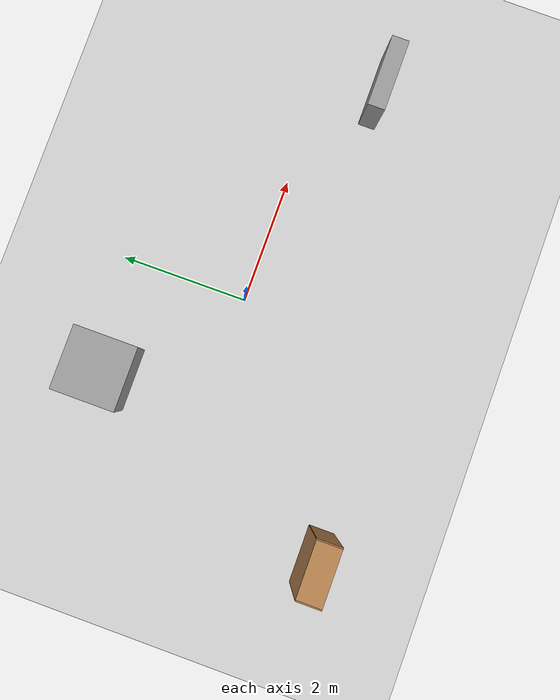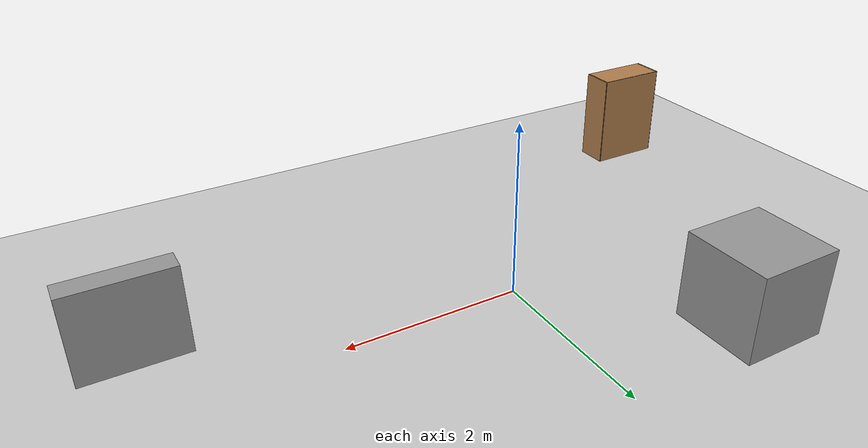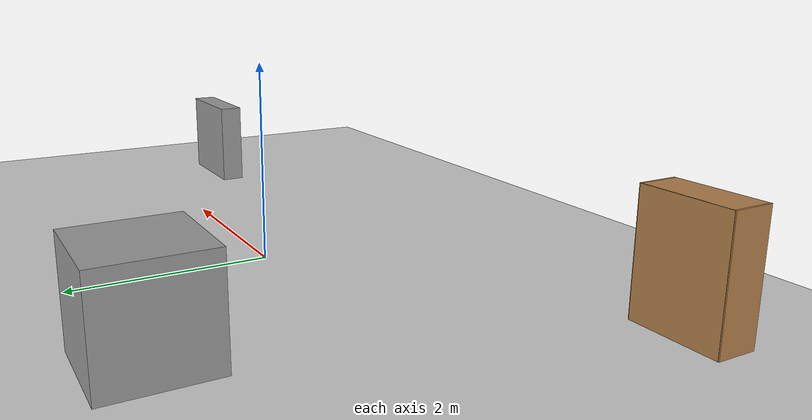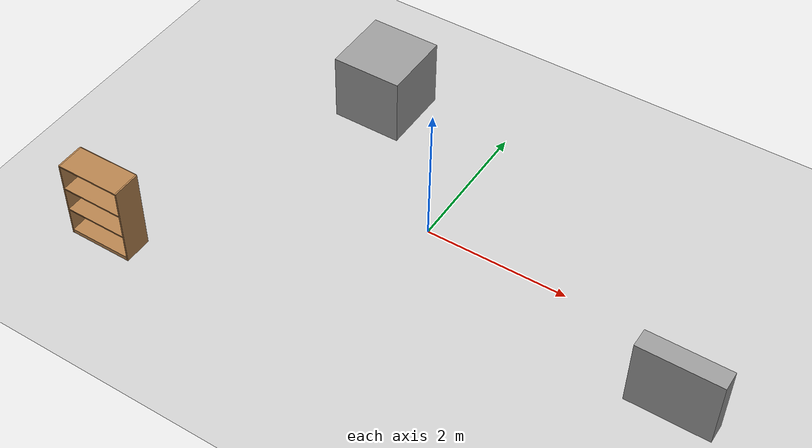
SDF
<sdf version="1.7">
 <world name="default">
  <light name="sun" type="directional">
   <pose>0 0 10 0 -0 0</pose>
   <diffuse>0.8 0.8 0.8 1</diffuse>
   <specular>0.2 0.2 0.2 1</specular>
   <attenuation>
    <range>1000</range>
    <constant>0.9</constant>
    <linear>0.01</linear>
    <quadratic>0.001</quadratic>
   </attenuation>
   <direction>-0.5 0.1 -0.9</direction>
   <spot><inner_angle>0</inner_angle><outer_angle>0</outer_angle><falloff>0</falloff></spot>
  </light>
  <model name="ground_plane">
   <static>1</static>
   <link name="link">
    <collision name="collision">
     <geometry><plane><normal>0 0 1</normal><size>100 100</size></plane></geometry>
     <surface>
      <contact><collide_bitmask>65535</collide_bitmask></contact>
      <friction><ode><mu>100</mu><mu2>50</mu2></ode></friction>
     </surface>
    </collision>
    <visual name="visual">
     <cast_shadows>0</cast_shadows>
     <geometry><plane><normal>0 0 1</normal><size>100 100</size></plane></geometry>
     <material>
      <script><uri>file://media/materials/scripts/gazebo.material</uri><name>Gazebo/Grey</name></script>
     </material>
    </visual>
   </link>
  </model>
  <scene><ambient>0.4 0.4 0.4 1</ambient><background>0.7 0.7 0.7 1</background><shadows>1</shadows></scene>
  <gravity>0 0 -9.8</gravity>
  <magnetic_field>6e-06 2.3e-05 -4.2e-05</magnetic_field>
  <atmosphere type="adiabatic"/>
  <physics type="ode">
   <max_step_size>0.001</max_step_size>
   <real_time_factor>1</real_time_factor>
   <real_time_update_rate>1000</real_time_update_rate>
  </physics>
  <spherical_coordinates>
   <surface_model>EARTH_WGS84</surface_model>
   <latitude_deg>0</latitude_deg>
   <longitude_deg>0</longitude_deg>
   <elevation>0</elevation>
   <heading_deg>0</heading_deg>
  </spherical_coordinates>
  <model name="unit_box_1">
   <link name="link">
    <inertial>
     <mass>1</mass>
     <inertia>
      <ixx>0.166667</ixx>
      <ixy>0</ixy>
      <ixz>0</ixz>
      <iyy>0.166667</iyy>
      <iyz>0</iyz>
      <izz>0.166667</izz>
     </inertia>
    </inertial>
    <visual name="visual">
     <geometry><box><size>1 1 1</size></box></geometry>
     <material>
      <script><name>Gazebo/Grey</name><uri>file://media/materials/scripts/gazebo.material</uri></script>
      <shader type="pixel"><normal_map>__default__</normal_map></shader>
      <ambient>0.3 0.3 0.3 1</ambient>
      <diffuse>0.7 0.7 0.7 1</diffuse>
      <specular>0.01 0.01 0.01 1</specular>
      <emissive>0 0 0 1</emissive>
     </material>
     <transparency>1</transparency>
    </visual>
    <collision name="collision">
     <geometry><box><size>1 1 1</size></box></geometry>
     <surface>
      <friction>
       <ode><mu>1</mu><mu2>1</mu2><fdir1>0 0 0</fdir1><slip1>0</slip1><slip2>0</slip2></ode>
       <torsional>
        <coefficient>1</coefficient>
        <patch_radius>0</patch_radius>
        <surface_radius>0</surface_radius>
        <use_patch_radius>1</use_patch_radius>
        <ode><slip>0</slip></ode>
       </torsional>
      </friction>
      <bounce><restitution_coefficient>0</restitution_coefficient><threshold>1e+06</threshold></bounce>
      <contact>
       <collide_without_contact>0</collide_without_contact>
       <collide_without_contact_bitmask>1</collide_without_contact_bitmask>
       <collide_bitmask>1</collide_bitmask>
       <ode>
        <soft_cfm>0</soft_cfm>
        <soft_erp>0.2</soft_erp>
        <kp>1e+13</kp>
        <kd>1</kd>
        <max_vel>0.01</max_vel>
        <min_depth>0</min_depth>
       </ode>
       <bullet>
        <split_impulse>1</split_impulse>
        <split_impulse_penetration_threshold>-0.01</split_impulse_penetration_threshold>
        <soft_cfm>0</soft_cfm>
        <soft_erp>0.2</soft_erp>
        <kp>1e+13</kp>
        <kd>1</kd>
       </bullet>
      </contact>
     </surface>
    </collision>
   </link>
   <static>0</static>
   <pose>9.17109 -3.69874 0.5 0 0 -5e-06</pose>
  </model>
  <model name="unit_box_0">
   <link name="link">
    <inertial>
     <mass>1</mass>
     <inertia>
      <ixx>0.166667</ixx>
      <ixy>0</ixy>
      <ixz>0</ixz>
      <iyy>0.166667</iyy>
      <iyz>0</iyz>
      <izz>0.166667</izz>
     </inertia>
    </inertial>
    <visual name="visual">
     <geometry><box><size>1 0.999997 1</size></box></geometry>
     <material>
      <script><name>Gazebo/Grey</name><uri>file://media/materials/scripts/gazebo.material</uri></script>
      <shader type="pixel"><normal_map>__default__</normal_map></shader>
      <ambient>0.3 0.3 0.3 1</ambient>
      <diffuse>0.7 0.7 0.7 1</diffuse>
      <specular>0.01 0.01 0.01 1</specular>
      <emissive>0 0 0 1</emissive>
     </material>
     <transparency>1</transparency>
    </visual>
    <collision name="collision">
     <geometry><box><size>1 0.999997 1</size></box></geometry>
     <surface>
      <friction>
       <ode><mu>1</mu><mu2>1</mu2><fdir1>0 0 0</fdir1><slip1>0</slip1><slip2>0</slip2></ode>
       <torsional>
        <coefficient>1</coefficient>
        <patch_radius>0</patch_radius>
        <surface_radius>0</surface_radius>
        <use_patch_radius>1</use_patch_radius>
        <ode><slip>0</slip></ode>
       </torsional>
      </friction>
      <bounce><restitution_coefficient>0</restitution_coefficient><threshold>1e+06</threshold></bounce>
      <contact>
       <collide_without_contact>0</collide_without_contact>
       <collide_without_contact_bitmask>1</collide_without_contact_bitmask>
       <collide_bitmask>1</collide_bitmask>
       <ode>
        <soft_cfm>0</soft_cfm>
        <soft_erp>0.2</soft_erp>
        <kp>1e+13</kp>
        <kd>1</kd>
        <max_vel>0.01</max_vel>
        <min_depth>0</min_depth>
       </ode>
       <bullet>
        <split_impulse>1</split_impulse>
        <split_impulse_penetration_threshold>-0.01</split_impulse_penetration_threshold>
        <soft_cfm>0</soft_cfm>
        <soft_erp>0.2</soft_erp>
        <kp>1e+13</kp>
        <kd>1</kd>
       </bullet>
      </contact>
     </surface>
    </collision>
   </link>
   <static>0</static>
   <pose>7.694 1.8578 0.5 0 0 -1e-05</pose>
  </model>
  <model name="unit_box_5">
   <link name="link">
    <inertial>
     <mass>1</mass>
     <inertia>
      <ixx>0.166667</ixx>
      <ixy>0</ixy>
      <ixz>0</ixz>
      <iyy>0.166667</iyy>
      <iyz>0</iyz>
      <izz>0.166667</izz>
     </inertia>
    </inertial>
    <visual name="visual">
     <geometry><box><size>1 1 1</size></box></geometry>
     <material>
      <script><name>Gazebo/Grey</name><uri>file://media/materials/scripts/gazebo.material</uri></script>
      <shader type="pixel"><normal_map>__default__</normal_map></shader>
      <ambient>0.3 0.3 0.3 1</ambient>
      <diffuse>0.7 0.7 0.7 1</diffuse>
      <specular>0.01 0.01 0.01 1</specular>
      <emissive>0 0 0 1</emissive>
     </material>
     <transparency>1</transparency>
    </visual>
    <collision name="collision">
     <geometry><box><size>1 1 1</size></box></geometry>
     <surface>
      <friction>
       <ode><mu>1</mu><mu2>1</mu2><fdir1>0 0 0</fdir1><slip1>0</slip1><slip2>0</slip2></ode>
       <torsional>
        <coefficient>1</coefficient>
        <patch_radius>0</patch_radius>
        <surface_radius>0</surface_radius>
        <use_patch_radius>1</use_patch_radius>
        <ode><slip>0</slip></ode>
       </torsional>
      </friction>
      <bounce><restitution_coefficient>0</restitution_coefficient><threshold>1e+06</threshold></bounce>
      <contact>
       <collide_without_contact>0</collide_without_contact>
       <collide_without_contact_bitmask>1</collide_without_contact_bitmask>
       <collide_bitmask>1</collide_bitmask>
       <ode>
        <soft_cfm>0</soft_cfm>
        <soft_erp>0.2</soft_erp>
        <kp>1e+13</kp>
        <kd>1</kd>
        <max_vel>0.01</max_vel>
        <min_depth>0</min_depth>
       </ode>
       <bullet>
        <split_impulse>1</split_impulse>
        <split_impulse_penetration_threshold>-0.01</split_impulse_penetration_threshold>
        <soft_cfm>0</soft_cfm>
        <soft_erp>0.2</soft_erp>
        <kp>1e+13</kp>
        <kd>1</kd>
       </bullet>
      </contact>
     </surface>
    </collision>
   </link>
   <static>0</static>
   <pose>0.157046 1.47243 0.5 0 -0 2e-06</pose>
  </model>
  <model name="unit_box">
   <pose>-1.76105 1.70155 0.499995 1e-05 -0 0</pose>
   <link name="link">
    <inertial>
     <mass>1</mass>
     <inertia>
      <ixx>0.166667</ixx>
      <ixy>0</ixy>
      <ixz>0</ixz>
      <iyy>0.166667</iyy>
      <iyz>0</iyz>
      <izz>0.166667</izz>
     </inertia>
    </inertial>
    <collision name="collision"><geometry><box><size>1 1 1</size></box></geometry></collision>
    <visual name="visual">
     <geometry><box><size>1 1 1</size></box></geometry>
     <material>
      <script><name>Gazebo/Grey</name><uri>file://media/materials/scripts/gazebo.material</uri></script>
     </material>
    </visual>
   </link>
  </model>
  <model name="bookshelf_2">
   <static>1</static>
   <link name="link">
    <inertial><mass>1</mass></inertial>
    <collision name="back">
     <pose>0 0.005 0.6 0 -0 0</pose>
     <geometry><box><size>0.9 0.01 1.2</size></box></geometry>
    </collision>
    <visual name="visual1">
     <pose>0 0.005 0.6 0 -0 0</pose>
     <geometry><box><size>0.9 0.01 1.2</size></box></geometry>
     <material>
      <script><uri>file://media/materials/scripts/gazebo.material</uri><name>Gazebo/Wood</name></script>
     </material>
    </visual>
    <collision name="left_side">
     <pose>0.45 -0.195 0.6 0 -0 0</pose>
     <geometry><box><size>0.02 0.4 1.2</size></box></geometry>
    </collision>
    <visual name="visual2">
     <pose>0.45 -0.195 0.6 0 -0 0</pose>
     <geometry><box><size>0.02 0.4 1.2</size></box></geometry>
     <material>
      <script><uri>file://media/materials/scripts/gazebo.material</uri><name>Gazebo/Wood</name></script>
     </material>
    </visual>
    <collision name="right_side">
     <pose>-0.45 -0.195 0.6 0 -0 0</pose>
     <geometry><box><size>0.02 0.4 1.2</size></box></geometry>
    </collision>
    <visual name="visual3">
     <pose>-0.45 -0.195 0.6 0 -0 0</pose>
     <geometry><box><size>0.02 0.4 1.2</size></box></geometry>
     <material>
      <script><uri>file://media/materials/scripts/gazebo.material</uri><name>Gazebo/Wood</name></script>
     </material>
    </visual>
    <collision name="bottom">
     <pose>0 -0.195 0.03 0 -0 0</pose>
     <geometry><box><size>0.88 0.4 0.06</size></box></geometry>
    </collision>
    <visual name="visual4">
     <pose>0 -0.195 0.03 0 -0 0</pose>
     <geometry><box><size>0.88 0.4 0.06</size></box></geometry>
     <material>
      <script><uri>file://media/materials/scripts/gazebo.material</uri><name>Gazebo/Wood</name></script>
     </material>
    </visual>
    <collision name="top">
     <pose>0 -0.195 1.19 0 -0 0</pose>
     <geometry><box><size>0.88 0.4 0.02</size></box></geometry>
    </collision>
    <visual name="visual5">
     <pose>0 -0.195 1.19 0 -0 0</pose>
     <geometry><box><size>0.88 0.4 0.02</size></box></geometry>
     <material>
      <script><uri>file://media/materials/scripts/gazebo.material</uri><name>Gazebo/Wood</name></script>
     </material>
    </visual>
    <collision name="low_shelf">
     <pose>0 -0.195 0.43 0 -0 0</pose>
     <geometry><box><size>0.88 0.4 0.02</size></box></geometry>
    </collision>
    <visual name="visual6">
     <pose>0 -0.195 0.43 0 -0 0</pose>
     <geometry><box><size>0.88 0.4 0.02</size></box></geometry>
     <material>
      <script><uri>file://media/materials/scripts/gazebo.material</uri><name>Gazebo/Wood</name></script>
     </material>
    </visual>
    <collision name="high_shelf">
     <pose>0 -0.195 0.8 0 -0 0</pose>
     <geometry><box><size>0.88 0.4 0.02</size></box></geometry>
    </collision>
    <visual name="visual7">
     <pose>0 -0.195 0.8 0 -0 0</pose>
     <geometry><box><size>0.88 0.4 0.02</size></box></geometry>
     <material>
      <script><uri>file://media/materials/scripts/gazebo.material</uri><name>Gazebo/Wood</name></script>
     </material>
    </visual>
   </link>
   <pose>-3.37439 -2.1227 0 0 -0 0</pose>
  </model>
  <model name="unit_box_2">
   <pose>3.84306 -0.872865 0.5 0 -0 0</pose>
   <link name="link">
    <inertial>
     <mass>1</mass>
     <inertia>
      <ixx>0.166667</ixx>
      <ixy>0</ixy>
      <ixz>0</ixz>
      <iyy>0.166667</iyy>
      <iyz>0</iyz>
      <izz>0.166667</izz>
     </inertia>
    </inertial>
    <collision name="collision"><geometry><box><size>1.11791 0.270038 1</size></box></geometry></collision>
    <visual name="visual">
     <geometry><box><size>1.11791 0.270038 1</size></box></geometry>
     <material>
      <script><name>Gazebo/Grey</name><uri>file://media/materials/scripts/gazebo.material</uri></script>
     </material>
    </visual>
   </link>
  </model>
 </world>
</sdf>
